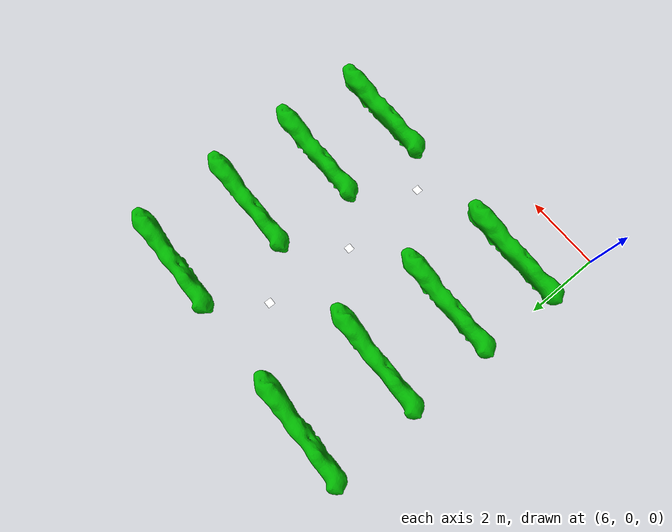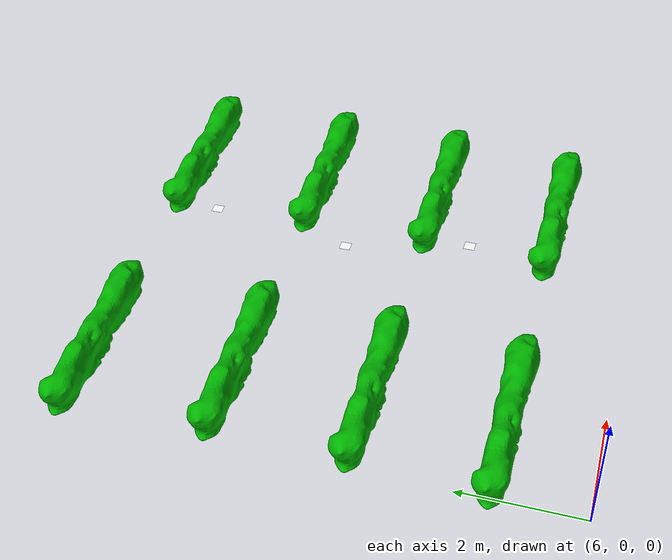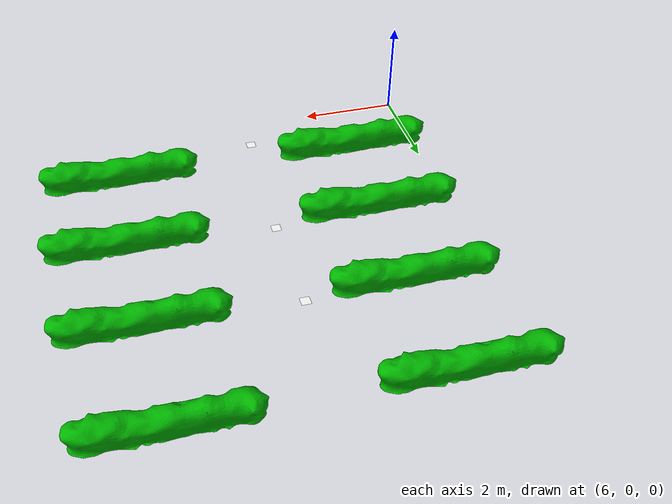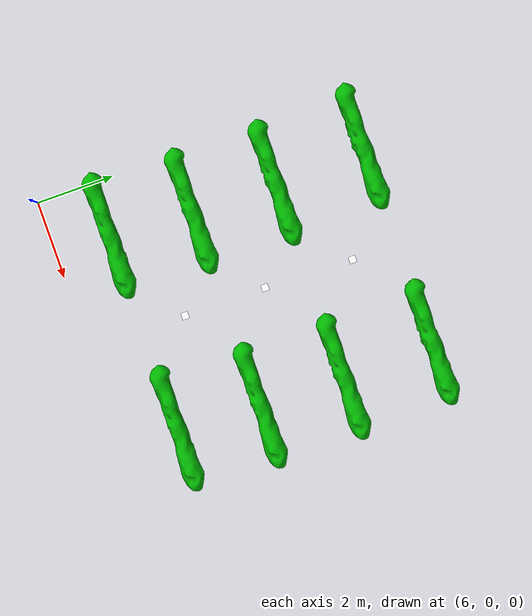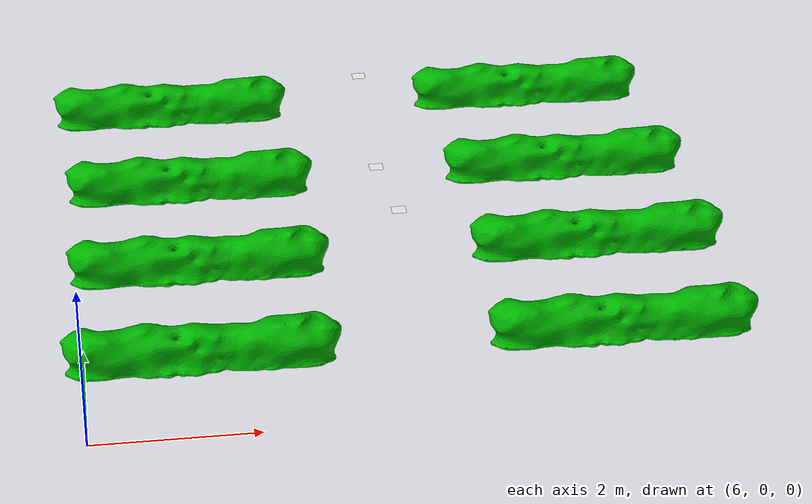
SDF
<sdf version="1.6">
 <world name="default">
  <model name="plot">
   <link name="link_6">
    <inertial>
     <mass>1</mass>
     <inertia>
      <ixx>0.166667</ixx>
      <ixy>0</ixy>
      <ixz>0</ixz>
      <iyy>0.166667</iyy>
      <iyz>0</iyz>
      <izz>0.166667</izz>
     </inertia>
    </inertial>
    <visual name="visual">
     <pose>0 0 0.35211 0 -0 0</pose>
     <geometry><mesh><uri>model://plot/meshes/plot.stl</uri><scale>1 1 1</scale></mesh></geometry>
     <material>
      <lighting>1</lighting>
      <script><uri>file://media/materials/scripts/gazebo.material</uri><name>Gazebo/Grey</name></script>
      <shader type="pixel"><normal_map>__default__</normal_map></shader>
      <ambient>0.2 0.9 0.1 1</ambient>
      <diffuse>0 0.7 0 1</diffuse>
      <specular>0.01 0.01 0.01 1</specular>
      <emissive>0 0 0 1</emissive>
     </material>
    </visual>
    <collision name="collision">
     <pose>0 0 0.306336 0 -0 0</pose>
     <geometry><mesh><uri>model://plot/meshes/plot.stl</uri><scale>1 1 1</scale></mesh></geometry>
     <surface>
      <friction>
       <ode><mu>1</mu><mu2>1</mu2><fdir1>0 0 0</fdir1><slip1>0</slip1><slip2>0</slip2></ode>
       <torsional>
        <coefficient>1</coefficient>
        <patch_radius>0</patch_radius>
        <surface_radius>0</surface_radius>
        <use_patch_radius>1</use_patch_radius>
        <ode><slip>0</slip></ode>
       </torsional>
      </friction>
      <bounce><restitution_coefficient>0</restitution_coefficient><threshold>1e+06</threshold></bounce>
      <contact>
       <collide_without_contact>0</collide_without_contact>
       <collide_without_contact_bitmask>1</collide_without_contact_bitmask>
       <collide_bitmask>1</collide_bitmask>
       <ode>
        <soft_cfm>0</soft_cfm>
        <soft_erp>0.2</soft_erp>
        <kp>1e+13</kp>
        <kd>1</kd>
        <max_vel>0.01</max_vel>
        <min_depth>0</min_depth>
       </ode>
       <bullet>
        <split_impulse>1</split_impulse>
        <split_impulse_penetration_threshold>-0.01</split_impulse_penetration_threshold>
        <soft_cfm>0</soft_cfm>
        <soft_erp>0.2</soft_erp>
        <kp>1e+13</kp>
        <kd>1</kd>
       </bullet>
      </contact>
     </surface>
    </collision>
   </link>
   <static>1</static>
   <pose>7.40568 8.1795 0 0 -0 0</pose>
  </model>
  <model name="plot_0">
   <link name="link_6">
    <inertial>
     <mass>1</mass>
     <inertia>
      <ixx>0.166667</ixx>
      <ixy>0</ixy>
      <ixz>0</ixz>
      <iyy>0.166667</iyy>
      <iyz>0</iyz>
      <izz>0.166667</izz>
     </inertia>
    </inertial>
    <visual name="visual">
     <pose>0 0 0.35211 0 -0 0</pose>
     <geometry><mesh><uri>model://plot/meshes/plot.stl</uri><scale>1 1 1</scale></mesh></geometry>
     <material>
      <lighting>1</lighting>
      <script><uri>file://media/materials/scripts/gazebo.material</uri><name>Gazebo/Grey</name></script>
      <shader type="pixel"><normal_map>__default__</normal_map></shader>
      <ambient>0.2 0.9 0.1 1</ambient>
      <diffuse>0 0.7 0 1</diffuse>
      <specular>0.01 0.01 0.01 1</specular>
      <emissive>0 0 0 1</emissive>
     </material>
    </visual>
    <collision name="collision">
     <pose>0 0 0.306336 0 -0 0</pose>
     <geometry><mesh><uri>model://plot/meshes/plot.stl</uri><scale>1 1 1</scale></mesh></geometry>
     <surface>
      <friction>
       <ode><mu>1</mu><mu2>1</mu2><fdir1>0 0 0</fdir1><slip1>0</slip1><slip2>0</slip2></ode>
       <torsional>
        <coefficient>1</coefficient>
        <patch_radius>0</patch_radius>
        <surface_radius>0</surface_radius>
        <use_patch_radius>1</use_patch_radius>
        <ode><slip>0</slip></ode>
       </torsional>
      </friction>
      <bounce><restitution_coefficient>0</restitution_coefficient><threshold>1e+06</threshold></bounce>
      <contact>
       <collide_without_contact>0</collide_without_contact>
       <collide_without_contact_bitmask>1</collide_without_contact_bitmask>
       <collide_bitmask>1</collide_bitmask>
       <ode>
        <soft_cfm>0</soft_cfm>
        <soft_erp>0.2</soft_erp>
        <kp>1e+13</kp>
        <kd>1</kd>
        <max_vel>0.01</max_vel>
        <min_depth>0</min_depth>
       </ode>
       <bullet>
        <split_impulse>1</split_impulse>
        <split_impulse_penetration_threshold>-0.01</split_impulse_penetration_threshold>
        <soft_cfm>0</soft_cfm>
        <soft_erp>0.2</soft_erp>
        <kp>1e+13</kp>
        <kd>1</kd>
       </bullet>
      </contact>
     </surface>
    </collision>
   </link>
   <static>1</static>
   <pose>12.5994 8.18886 0 0 -0 0</pose>
  </model>
  <model name="plot_3">
   <link name="link_6">
    <inertial>
     <mass>1</mass>
     <inertia>
      <ixx>0.166667</ixx>
      <ixy>0</ixy>
      <ixz>0</ixz>
      <iyy>0.166667</iyy>
      <iyz>0</iyz>
      <izz>0.166667</izz>
     </inertia>
    </inertial>
    <visual name="visual">
     <pose>0 0 0.35211 0 -0 0</pose>
     <geometry><mesh><uri>model://plot/meshes/plot.stl</uri><scale>1 1 1</scale></mesh></geometry>
     <material>
      <lighting>1</lighting>
      <script><uri>file://media/materials/scripts/gazebo.material</uri><name>Gazebo/Grey</name></script>
      <shader type="pixel"><normal_map>__default__</normal_map></shader>
      <ambient>0.2 0.9 0.1 1</ambient>
      <diffuse>0 0.7 0 1</diffuse>
      <specular>0.01 0.01 0.01 1</specular>
      <emissive>0 0 0 1</emissive>
     </material>
    </visual>
    <collision name="collision">
     <pose>0 0 0.306336 0 -0 0</pose>
     <geometry><mesh><uri>model://plot/meshes/plot.stl</uri><scale>1 1 1</scale></mesh></geometry>
     <surface>
      <friction>
       <ode><mu>1</mu><mu2>1</mu2><fdir1>0 0 0</fdir1><slip1>0</slip1><slip2>0</slip2></ode>
       <torsional>
        <coefficient>1</coefficient>
        <patch_radius>0</patch_radius>
        <surface_radius>0</surface_radius>
        <use_patch_radius>1</use_patch_radius>
        <ode><slip>0</slip></ode>
       </torsional>
      </friction>
      <bounce><restitution_coefficient>0</restitution_coefficient><threshold>1e+06</threshold></bounce>
      <contact>
       <collide_without_contact>0</collide_without_contact>
       <collide_without_contact_bitmask>1</collide_without_contact_bitmask>
       <collide_bitmask>1</collide_bitmask>
       <ode>
        <soft_cfm>0</soft_cfm>
        <soft_erp>0.2</soft_erp>
        <kp>1e+13</kp>
        <kd>1</kd>
        <max_vel>0.01</max_vel>
        <min_depth>0</min_depth>
       </ode>
       <bullet>
        <split_impulse>1</split_impulse>
        <split_impulse_penetration_threshold>-0.01</split_impulse_penetration_threshold>
        <soft_cfm>0</soft_cfm>
        <soft_erp>0.2</soft_erp>
        <kp>1e+13</kp>
        <kd>1</kd>
       </bullet>
      </contact>
     </surface>
    </collision>
   </link>
   <static>1</static>
   <pose>12.6789 5.81234 0 0 -0 0</pose>
  </model>
  <model name="plot_5">
   <link name="link_6">
    <inertial>
     <mass>1</mass>
     <inertia>
      <ixx>0.166667</ixx>
      <ixy>0</ixy>
      <ixz>0</ixz>
      <iyy>0.166667</iyy>
      <iyz>0</iyz>
      <izz>0.166667</izz>
     </inertia>
    </inertial>
    <visual name="visual">
     <pose>0 0 0.35211 0 -0 0</pose>
     <geometry><mesh><uri>model://plot/meshes/plot.stl</uri><scale>1 1 1</scale></mesh></geometry>
     <material>
      <lighting>1</lighting>
      <script><uri>file://media/materials/scripts/gazebo.material</uri><name>Gazebo/Grey</name></script>
      <shader type="pixel"><normal_map>__default__</normal_map></shader>
      <ambient>0.2 0.9 0.1 1</ambient>
      <diffuse>0 0.7 0 1</diffuse>
      <specular>0.01 0.01 0.01 1</specular>
      <emissive>0 0 0 1</emissive>
     </material>
    </visual>
    <collision name="collision">
     <pose>0 0 0.306336 0 -0 0</pose>
     <geometry><mesh><uri>model://plot/meshes/plot.stl</uri><scale>1 1 1</scale></mesh></geometry>
     <surface>
      <friction>
       <ode><mu>1</mu><mu2>1</mu2><fdir1>0 0 0</fdir1><slip1>0</slip1><slip2>0</slip2></ode>
       <torsional>
        <coefficient>1</coefficient>
        <patch_radius>0</patch_radius>
        <surface_radius>0</surface_radius>
        <use_patch_radius>1</use_patch_radius>
        <ode><slip>0</slip></ode>
       </torsional>
      </friction>
      <bounce><restitution_coefficient>0</restitution_coefficient><threshold>1e+06</threshold></bounce>
      <contact>
       <collide_without_contact>0</collide_without_contact>
       <collide_without_contact_bitmask>1</collide_without_contact_bitmask>
       <collide_bitmask>1</collide_bitmask>
       <ode>
        <soft_cfm>0</soft_cfm>
        <soft_erp>0.2</soft_erp>
        <kp>1e+13</kp>
        <kd>1</kd>
        <max_vel>0.01</max_vel>
        <min_depth>0</min_depth>
       </ode>
       <bullet>
        <split_impulse>1</split_impulse>
        <split_impulse_penetration_threshold>-0.01</split_impulse_penetration_threshold>
        <soft_cfm>0</soft_cfm>
        <soft_erp>0.2</soft_erp>
        <kp>1e+13</kp>
        <kd>1</kd>
       </bullet>
      </contact>
     </surface>
    </collision>
   </link>
   <static>1</static>
   <pose>7.53126 5.81268 0 0 -0 0</pose>
  </model>
  <model name="plot_6">
   <link name="link_6">
    <inertial>
     <mass>1</mass>
     <inertia>
      <ixx>0.166667</ixx>
      <ixy>0</ixy>
      <ixz>0</ixz>
      <iyy>0.166667</iyy>
      <iyz>0</iyz>
      <izz>0.166667</izz>
     </inertia>
    </inertial>
    <visual name="visual">
     <pose>0 0 0.35211 0 -0 0</pose>
     <geometry><mesh><uri>model://plot/meshes/plot.stl</uri><scale>1 1 1</scale></mesh></geometry>
     <material>
      <lighting>1</lighting>
      <script><uri>file://media/materials/scripts/gazebo.material</uri><name>Gazebo/Grey</name></script>
      <shader type="pixel"><normal_map>__default__</normal_map></shader>
      <ambient>0.2 0.9 0.1 1</ambient>
      <diffuse>0 0.7 0 1</diffuse>
      <specular>0.01 0.01 0.01 1</specular>
      <emissive>0 0 0 1</emissive>
     </material>
    </visual>
    <collision name="collision">
     <pose>0 0 0.306336 0 -0 0</pose>
     <geometry><mesh><uri>model://plot/meshes/plot.stl</uri><scale>1 1 1</scale></mesh></geometry>
     <surface>
      <friction>
       <ode><mu>1</mu><mu2>1</mu2><fdir1>0 0 0</fdir1><slip1>0</slip1><slip2>0</slip2></ode>
       <torsional>
        <coefficient>1</coefficient>
        <patch_radius>0</patch_radius>
        <surface_radius>0</surface_radius>
        <use_patch_radius>1</use_patch_radius>
        <ode><slip>0</slip></ode>
       </torsional>
      </friction>
      <bounce><restitution_coefficient>0</restitution_coefficient><threshold>1e+06</threshold></bounce>
      <contact>
       <collide_without_contact>0</collide_without_contact>
       <collide_without_contact_bitmask>1</collide_without_contact_bitmask>
       <collide_bitmask>1</collide_bitmask>
       <ode>
        <soft_cfm>0</soft_cfm>
        <soft_erp>0.2</soft_erp>
        <kp>1e+13</kp>
        <kd>1</kd>
        <max_vel>0.01</max_vel>
        <min_depth>0</min_depth>
       </ode>
       <bullet>
        <split_impulse>1</split_impulse>
        <split_impulse_penetration_threshold>-0.01</split_impulse_penetration_threshold>
        <soft_cfm>0</soft_cfm>
        <soft_erp>0.2</soft_erp>
        <kp>1e+13</kp>
        <kd>1</kd>
       </bullet>
      </contact>
     </surface>
    </collision>
   </link>
   <static>1</static>
   <pose>12.6627 3.60745 0 0 -0 0</pose>
  </model>
  <model name="plot_7">
   <link name="link_6">
    <inertial>
     <mass>1</mass>
     <inertia>
      <ixx>0.166667</ixx>
      <ixy>0</ixy>
      <ixz>0</ixz>
      <iyy>0.166667</iyy>
      <iyz>0</iyz>
      <izz>0.166667</izz>
     </inertia>
    </inertial>
    <visual name="visual">
     <pose>0 0 0.35211 0 -0 0</pose>
     <geometry><mesh><uri>model://plot/meshes/plot.stl</uri><scale>1 1 1</scale></mesh></geometry>
     <material>
      <lighting>1</lighting>
      <script><uri>file://media/materials/scripts/gazebo.material</uri><name>Gazebo/Grey</name></script>
      <shader type="pixel"><normal_map>__default__</normal_map></shader>
      <ambient>0.2 0.9 0.1 1</ambient>
      <diffuse>0 0.7 0 1</diffuse>
      <specular>0.01 0.01 0.01 1</specular>
      <emissive>0 0 0 1</emissive>
     </material>
    </visual>
    <collision name="collision">
     <pose>0 0 0.306336 0 -0 0</pose>
     <geometry><mesh><uri>model://plot/meshes/plot.stl</uri><scale>1 1 1</scale></mesh></geometry>
     <surface>
      <friction>
       <ode><mu>1</mu><mu2>1</mu2><fdir1>0 0 0</fdir1><slip1>0</slip1><slip2>0</slip2></ode>
       <torsional>
        <coefficient>1</coefficient>
        <patch_radius>0</patch_radius>
        <surface_radius>0</surface_radius>
        <use_patch_radius>1</use_patch_radius>
        <ode><slip>0</slip></ode>
       </torsional>
      </friction>
      <bounce><restitution_coefficient>0</restitution_coefficient><threshold>1e+06</threshold></bounce>
      <contact>
       <collide_without_contact>0</collide_without_contact>
       <collide_without_contact_bitmask>1</collide_without_contact_bitmask>
       <collide_bitmask>1</collide_bitmask>
       <ode>
        <soft_cfm>0</soft_cfm>
        <soft_erp>0.2</soft_erp>
        <kp>1e+13</kp>
        <kd>1</kd>
        <max_vel>0.01</max_vel>
        <min_depth>0</min_depth>
       </ode>
       <bullet>
        <split_impulse>1</split_impulse>
        <split_impulse_penetration_threshold>-0.01</split_impulse_penetration_threshold>
        <soft_cfm>0</soft_cfm>
        <soft_erp>0.2</soft_erp>
        <kp>1e+13</kp>
        <kd>1</kd>
       </bullet>
      </contact>
     </surface>
    </collision>
   </link>
   <static>1</static>
   <pose>12.5096 1.4532 0 0 -0 0</pose>
  </model>
  <model name="plot_8">
   <link name="link_6">
    <inertial>
     <mass>1</mass>
     <inertia>
      <ixx>0.166667</ixx>
      <ixy>0</ixy>
      <ixz>0</ixz>
      <iyy>0.166667</iyy>
      <iyz>0</iyz>
      <izz>0.166667</izz>
     </inertia>
    </inertial>
    <visual name="visual">
     <pose>0 0 0.35211 0 -0 0</pose>
     <geometry><mesh><uri>model://plot/meshes/plot.stl</uri><scale>1 1 1</scale></mesh></geometry>
     <material>
      <lighting>1</lighting>
      <script><uri>file://media/materials/scripts/gazebo.material</uri><name>Gazebo/Grey</name></script>
      <shader type="pixel"><normal_map>__default__</normal_map></shader>
      <ambient>0.2 0.9 0.1 1</ambient>
      <diffuse>0 0.7 0 1</diffuse>
      <specular>0.01 0.01 0.01 1</specular>
      <emissive>0 0 0 1</emissive>
     </material>
    </visual>
    <collision name="collision">
     <pose>0 0 0.306336 0 -0 0</pose>
     <geometry><mesh><uri>model://plot/meshes/plot.stl</uri><scale>1 1 1</scale></mesh></geometry>
     <surface>
      <friction>
       <ode><mu>1</mu><mu2>1</mu2><fdir1>0 0 0</fdir1><slip1>0</slip1><slip2>0</slip2></ode>
       <torsional>
        <coefficient>1</coefficient>
        <patch_radius>0</patch_radius>
        <surface_radius>0</surface_radius>
        <use_patch_radius>1</use_patch_radius>
        <ode><slip>0</slip></ode>
       </torsional>
      </friction>
      <bounce><restitution_coefficient>0</restitution_coefficient><threshold>1e+06</threshold></bounce>
      <contact>
       <collide_without_contact>0</collide_without_contact>
       <collide_without_contact_bitmask>1</collide_without_contact_bitmask>
       <collide_bitmask>1</collide_bitmask>
       <ode>
        <soft_cfm>0</soft_cfm>
        <soft_erp>0.2</soft_erp>
        <kp>1e+13</kp>
        <kd>1</kd>
        <max_vel>0.01</max_vel>
        <min_depth>0</min_depth>
       </ode>
       <bullet>
        <split_impulse>1</split_impulse>
        <split_impulse_penetration_threshold>-0.01</split_impulse_penetration_threshold>
        <soft_cfm>0</soft_cfm>
        <soft_erp>0.2</soft_erp>
        <kp>1e+13</kp>
        <kd>1</kd>
       </bullet>
      </contact>
     </surface>
    </collision>
   </link>
   <static>1</static>
   <pose>7.40233 1.45396 0 0 -0 0</pose>
  </model>
  <model name="plot_10">
   <link name="link_6">
    <inertial>
     <mass>1</mass>
     <inertia>
      <ixx>0.166667</ixx>
      <ixy>0</ixy>
      <ixz>0</ixz>
      <iyy>0.166667</iyy>
      <iyz>0</iyz>
      <izz>0.166667</izz>
     </inertia>
    </inertial>
    <visual name="visual">
     <pose>0 0 0.35211 0 -0 0</pose>
     <geometry><mesh><uri>model://plot/meshes/plot.stl</uri><scale>1 1 1</scale></mesh></geometry>
     <material>
      <lighting>1</lighting>
      <script><uri>file://media/materials/scripts/gazebo.material</uri><name>Gazebo/Grey</name></script>
      <shader type="pixel"><normal_map>__default__</normal_map></shader>
      <ambient>0.2 0.9 0.1 1</ambient>
      <diffuse>0 0.7 0 1</diffuse>
      <specular>0.01 0.01 0.01 1</specular>
      <emissive>0 0 0 1</emissive>
     </material>
    </visual>
    <collision name="collision">
     <pose>0 0 0.306336 0 -0 0</pose>
     <geometry><mesh><uri>model://plot/meshes/plot.stl</uri><scale>1 1 1</scale></mesh></geometry>
     <surface>
      <friction>
       <ode><mu>1</mu><mu2>1</mu2><fdir1>0 0 0</fdir1><slip1>0</slip1><slip2>0</slip2></ode>
       <torsional>
        <coefficient>1</coefficient>
        <patch_radius>0</patch_radius>
        <surface_radius>0</surface_radius>
        <use_patch_radius>1</use_patch_radius>
        <ode><slip>0</slip></ode>
       </torsional>
      </friction>
      <bounce><restitution_coefficient>0</restitution_coefficient><threshold>1e+06</threshold></bounce>
      <contact>
       <collide_without_contact>0</collide_without_contact>
       <collide_without_contact_bitmask>1</collide_without_contact_bitmask>
       <collide_bitmask>1</collide_bitmask>
       <ode>
        <soft_cfm>0</soft_cfm>
        <soft_erp>0.2</soft_erp>
        <kp>1e+13</kp>
        <kd>1</kd>
        <max_vel>0.01</max_vel>
        <min_depth>0</min_depth>
       </ode>
       <bullet>
        <split_impulse>1</split_impulse>
        <split_impulse_penetration_threshold>-0.01</split_impulse_penetration_threshold>
        <soft_cfm>0</soft_cfm>
        <soft_erp>0.2</soft_erp>
        <kp>1e+13</kp>
        <kd>1</kd>
       </bullet>
      </contact>
     </surface>
    </collision>
   </link>
   <static>1</static>
   <pose>7.50559 3.60167 0 0 -0 0</pose>
  </model>
  <model name="aruco_visual_marker_0">
   <link name="marker">
    <visual name="visual">
     <geometry><box><size>0.1778 0.1778 1e-05</size></box></geometry>
     <material>
      <script>
       <uri>model://aruco_visual_marker_0/materials/scripts</uri>
       <uri>model://aruco_visual_marker_0/materials/textures</uri>
       <name>ArucoVisualMarker0/Marker</name>
      </script>
      <ambient>1 1 1 1</ambient>
      <diffuse>1 1 1 1</diffuse>
      <specular>0 0 0 1</specular>
      <emissive>1 1 1 0</emissive>
      <shader type="vertex"><normal_map>__default__</normal_map></shader>
     </material>
    </visual>
    <collision name="collision"><geometry><box><size>0.1778 0.1778 1e-05</size></box></geometry></collision>
   </link>
   <joint name="marker_JOINT_marker_pad" type="revolute">
    <parent>marker</parent>
    <child>marker_pad</child>
    <axis>
     <xyz>0 0 1</xyz>
     <limit><upper>0</upper><lower>0</lower></limit>
     <use_parent_model_frame>0</use_parent_model_frame>
     <dynamics><spring_reference>0</spring_reference><spring_stiffness>0</spring_stiffness></dynamics>
    </axis>
   </joint>
   <static>1</static>
   <pose>9.92546 4.68715 0.879941 0 -0 0</pose>
  </model>
  <model name="aruco_visual_marker_3">
   <link name="marker">
    <visual name="visual">
     <geometry><box><size>0.1778 0.1778 1e-05</size></box></geometry>
     <material>
      <script>
       <uri>model://aruco_visual_marker_3/materials/scripts</uri>
       <uri>model://aruco_visual_marker_3/materials/textures</uri>
       <name>ArucoVisualMarker3/Marker</name>
      </script>
      <ambient>1 1 1 1</ambient>
      <diffuse>1 1 1 1</diffuse>
      <specular>0 0 0 1</specular>
      <emissive>1 1 1 0</emissive>
      <shader type="vertex"><normal_map>__default__</normal_map></shader>
     </material>
    </visual>
    <collision name="collision"><geometry><box><size>0.1778 0.1778 1e-05</size></box></geometry></collision>
   </link>
   <joint name="marker_JOINT_marker_pad" type="revolute">
    <parent>marker</parent>
    <child>marker_pad</child>
    <axis>
     <xyz>0 0 1</xyz>
     <limit><upper>0</upper><lower>0</lower></limit>
     <use_parent_model_frame>0</use_parent_model_frame>
     <dynamics><spring_reference>0</spring_reference><spring_stiffness>0</spring_stiffness></dynamics>
    </axis>
   </joint>
   <static>1</static>
   <pose>9.98816 6.94664 1.15082 0 -0 0</pose>
  </model>
  <model name="aruco_visual_marker_6">
   <link name="marker">
    <visual name="visual">
     <geometry><box><size>0.1778 0.1778 1e-05</size></box></geometry>
     <material>
      <script>
       <uri>model://aruco_visual_marker_6/materials/scripts</uri>
       <uri>model://aruco_visual_marker_6/materials/textures</uri>
       <name>ArucoVisualMarker6/Marker</name>
      </script>
      <ambient>1 1 1 1</ambient>
      <diffuse>1 1 1 1</diffuse>
      <specular>0 0 0 1</specular>
      <emissive>1 1 1 0</emissive>
      <shader type="vertex"><normal_map>__default__</normal_map></shader>
     </material>
    </visual>
    <collision name="collision"><geometry><box><size>0.1778 0.1778 1e-05</size></box></geometry></collision>
   </link>
   <joint name="marker_JOINT_marker_pad" type="revolute">
    <parent>marker</parent>
    <child>marker_pad</child>
    <axis>
     <xyz>0 0 1</xyz>
     <limit><upper>0</upper><lower>0</lower></limit>
     <use_parent_model_frame>0</use_parent_model_frame>
     <dynamics><spring_reference>0</spring_reference><spring_stiffness>0</spring_stiffness></dynamics>
    </axis>
   </joint>
   <static>1</static>
   <pose>9.91937 2.60746 1.34759 0 -0 0</pose>
  </model>
 </world>
</sdf>
